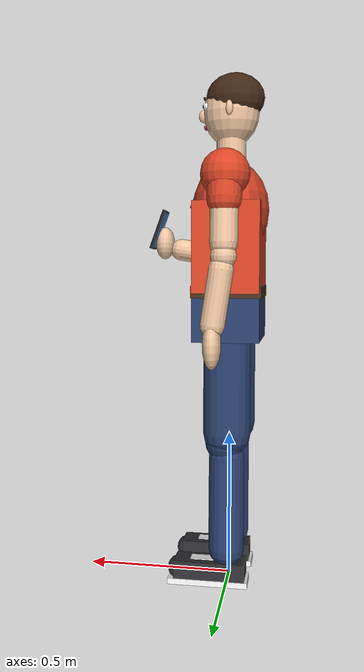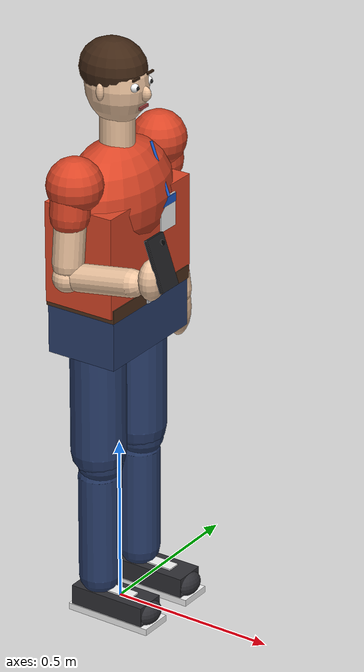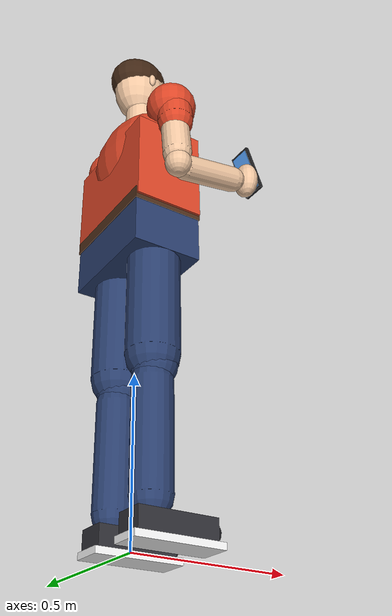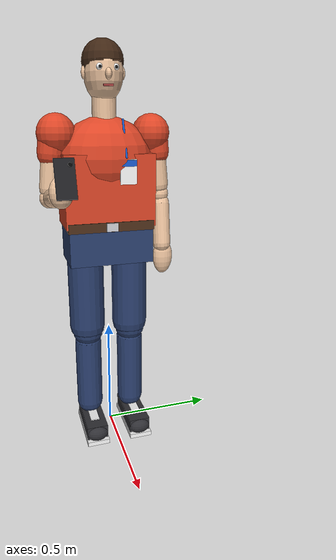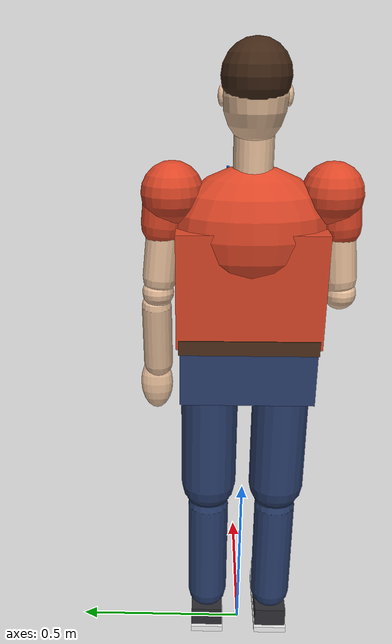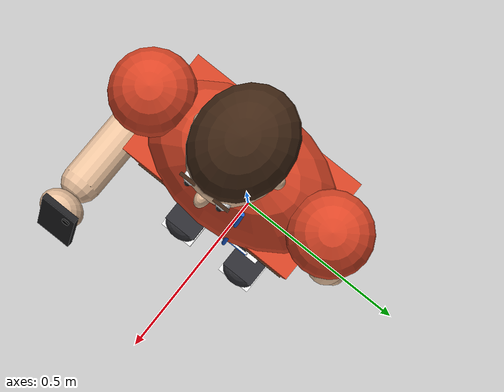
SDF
<?xml version="1.0"?>
<sdf version="1.9">
<model name="humain">
  <static>true</static>
  <!-- Spectateur Eurobot qui filme le match. Repere : origine au sol entre les pieds, x vers l'avant. Taille ~1.72 m. -->
  <link name="link">
    <!-- Collisions simplifiees : le lidar (z = 0.385 m) voit deux jambes -->
    <collision name="jambe_g_c"><pose>0 0.1 0.45 0 0 0</pose><geometry><capsule><radius>0.07</radius><length>0.72</length></capsule></geometry></collision>
    <collision name="jambe_d_c"><pose>0 -0.1 0.45 0 0 0</pose><geometry><capsule><radius>0.07</radius><length>0.72</length></capsule></geometry></collision>
    <collision name="torse_c"><pose>0 0 1.15 0 0 0</pose><geometry><box><size>0.26 0.44 0.6</size></box></geometry></collision>
    <collision name="tete_c"><pose>0 0 1.6 0 0 0</pose><geometry><sphere><radius>0.12</radius></sphere></geometry></collision>

    <!-- Jambe gauche -->
    <visual name="semelle_g"><pose>0.06 0.1 0.01 0 0 0</pose><geometry><box><size>0.27 0.1 0.02</size></box></geometry><material><ambient>0.95 0.95 0.95 1</ambient><diffuse>0.95 0.95 0.95 1</diffuse><specular>0.1 0.1 0.1 1</specular></material></visual>
    <visual name="chaussure_g"><pose>0.055 0.1 0.05 0 0 0</pose><geometry><box><size>0.24 0.095 0.06</size></box></geometry><material><ambient>0.18 0.18 0.2 1</ambient><diffuse>0.18 0.18 0.2 1</diffuse><specular>0.1 0.1 0.1 1</specular></material></visual>
    <visual name="bout_g"><pose>0.17 0.1 0.045 0 0 0</pose><geometry><ellipsoid><radii>0.03 0.0475 0.035</radii></ellipsoid></geometry><material><ambient>0.18 0.18 0.2 1</ambient><diffuse>0.18 0.18 0.2 1</diffuse><specular>0.1 0.1 0.1 1</specular></material></visual>
    <visual name="lacets_g"><pose>0.08 0.1 0.082 0 0 0</pose><geometry><box><size>0.08 0.04 0.005</size></box></geometry><material><ambient>0.95 0.95 0.95 1</ambient><diffuse>0.95 0.95 0.95 1</diffuse><specular>0.1 0.1 0.1 1</specular></material></visual>
    <visual name="mollet_g"><pose>0 0.1 0.28 0 0 0</pose><geometry><capsule><radius>0.06</radius><length>0.32</length></capsule></geometry><material><ambient>0.16 0.24 0.42 1</ambient><diffuse>0.16 0.24 0.42 1</diffuse><specular>0.1 0.1 0.1 1</specular></material></visual>
    <visual name="genou_g"><pose>0.005 0.1 0.49 0 0 0</pose><geometry><sphere><radius>0.068</radius></sphere></geometry><material><ambient>0.16 0.24 0.42 1</ambient><diffuse>0.16 0.24 0.42 1</diffuse><specular>0.1 0.1 0.1 1</specular></material></visual>
    <visual name="cuisse_g"><pose>0 0.1 0.68 0 0 0</pose><geometry><capsule><radius>0.08</radius><length>0.32</length></capsule></geometry><material><ambient>0.16 0.24 0.42 1</ambient><diffuse>0.16 0.24 0.42 1</diffuse><specular>0.1 0.1 0.1 1</specular></material></visual>

    <!-- Jambe droite -->
    <visual name="semelle_d"><pose>0.06 -0.1 0.01 0 0 0</pose><geometry><box><size>0.27 0.1 0.02</size></box></geometry><material><ambient>0.95 0.95 0.95 1</ambient><diffuse>0.95 0.95 0.95 1</diffuse><specular>0.1 0.1 0.1 1</specular></material></visual>
    <visual name="chaussure_d"><pose>0.055 -0.1 0.05 0 0 0</pose><geometry><box><size>0.24 0.095 0.06</size></box></geometry><material><ambient>0.18 0.18 0.2 1</ambient><diffuse>0.18 0.18 0.2 1</diffuse><specular>0.1 0.1 0.1 1</specular></material></visual>
    <visual name="bout_d"><pose>0.17 -0.1 0.045 0 0 0</pose><geometry><ellipsoid><radii>0.03 0.0475 0.035</radii></ellipsoid></geometry><material><ambient>0.18 0.18 0.2 1</ambient><diffuse>0.18 0.18 0.2 1</diffuse><specular>0.1 0.1 0.1 1</specular></material></visual>
    <visual name="lacets_d"><pose>0.08 -0.1 0.082 0 0 0</pose><geometry><box><size>0.08 0.04 0.005</size></box></geometry><material><ambient>0.95 0.95 0.95 1</ambient><diffuse>0.95 0.95 0.95 1</diffuse><specular>0.1 0.1 0.1 1</specular></material></visual>
    <visual name="mollet_d"><pose>0 -0.1 0.28 0 0 0</pose><geometry><capsule><radius>0.06</radius><length>0.32</length></capsule></geometry><material><ambient>0.16 0.24 0.42 1</ambient><diffuse>0.16 0.24 0.42 1</diffuse><specular>0.1 0.1 0.1 1</specular></material></visual>
    <visual name="genou_d"><pose>0.005 -0.1 0.49 0 0 0</pose><geometry><sphere><radius>0.068</radius></sphere></geometry><material><ambient>0.16 0.24 0.42 1</ambient><diffuse>0.16 0.24 0.42 1</diffuse><specular>0.1 0.1 0.1 1</specular></material></visual>
    <visual name="cuisse_d"><pose>0 -0.1 0.68 0 0 0</pose><geometry><capsule><radius>0.08</radius><length>0.32</length></capsule></geometry><material><ambient>0.16 0.24 0.42 1</ambient><diffuse>0.16 0.24 0.42 1</diffuse><specular>0.1 0.1 0.1 1</specular></material></visual>

    <!-- Bassin et ceinture -->
    <visual name="bassin"><pose>0 0 0.91 0 0 0</pose><geometry><box><size>0.22 0.36 0.16</size></box></geometry><material><ambient>0.16 0.24 0.42 1</ambient><diffuse>0.16 0.24 0.42 1</diffuse><specular>0.1 0.1 0.1 1</specular></material></visual>
    <visual name="ceinture"><pose>0 0 0.995 0 0 0</pose><geometry><box><size>0.226 0.366 0.04</size></box></geometry><material><ambient>0.3 0.18 0.1 1</ambient><diffuse>0.3 0.18 0.1 1</diffuse><specular>0.1 0.1 0.1 1</specular></material></visual>
    <visual name="boucle"><pose>0.115 0 0.995 0 0 0</pose><geometry><box><size>0.008 0.05 0.035</size></box></geometry><material><ambient>0.8 0.8 0.82 1</ambient><diffuse>0.8 0.8 0.82 1</diffuse><specular>0.1 0.1 0.1 1</specular></material></visual>

    <!-- Torse (t-shirt) -->
    <visual name="ventre"><pose>0 0 1.14 0 0 0</pose><geometry><box><size>0.22 0.38 0.3</size></box></geometry><material><ambient>0.85 0.27 0.15 1</ambient><diffuse>0.85 0.27 0.15 1</diffuse><specular>0.1 0.1 0.1 1</specular></material></visual>
    <visual name="poitrine"><pose>0 0 1.27 0 0 0</pose><geometry><ellipsoid><radii>0.13 0.2 0.17</radii></ellipsoid></geometry><material><ambient>0.85 0.27 0.15 1</ambient><diffuse>0.85 0.27 0.15 1</diffuse><specular>0.1 0.1 0.1 1</specular></material></visual>
    <visual name="epaule_g"><pose>0 0.2 1.37 0 0 0</pose><geometry><sphere><radius>0.08</radius></sphere></geometry><material><ambient>0.85 0.27 0.15 1</ambient><diffuse>0.85 0.27 0.15 1</diffuse><specular>0.1 0.1 0.1 1</specular></material></visual>
    <visual name="manche_g"><pose>0 0.222 1.32 0.1 0 0</pose><geometry><capsule><radius>0.056</radius><length>0.06</length></capsule></geometry><material><ambient>0.85 0.27 0.15 1</ambient><diffuse>0.85 0.27 0.15 1</diffuse><specular>0.1 0.1 0.1 1</specular></material></visual>
    <visual name="epaule_d"><pose>0 -0.2 1.37 0 0 0</pose><geometry><sphere><radius>0.08</radius></sphere></geometry><material><ambient>0.85 0.27 0.15 1</ambient><diffuse>0.85 0.27 0.15 1</diffuse><specular>0.1 0.1 0.1 1</specular></material></visual>
    <visual name="manche_d"><pose>0 -0.222 1.32 -0.1 0 0</pose><geometry><capsule><radius>0.056</radius><length>0.06</length></capsule></geometry><material><ambient>0.85 0.27 0.15 1</ambient><diffuse>0.85 0.27 0.15 1</diffuse><specular>0.1 0.1 0.1 1</specular></material></visual>

    <!-- Badge Eurobot -->
    <visual name="cordon"><pose>0.1 0.06 1.35 0 -0.375 0</pose><geometry><cylinder><radius>0.004</radius><length>0.16</length></cylinder></geometry><material><ambient>0.1 0.35 0.8 1</ambient><diffuse>0.1 0.35 0.8 1</diffuse><specular>0.1 0.1 0.1 1</specular></material></visual>
    <visual name="badge"><pose>0.119 0.07 1.22 0 0 0</pose><geometry><box><size>0.004 0.07 0.1</size></box></geometry><material><ambient>0.97 0.97 0.97 1</ambient><diffuse>0.97 0.97 0.97 1</diffuse><specular>0.1 0.1 0.1 1</specular></material></visual>
    <visual name="badge_bande"><pose>0.1215 0.07 1.255 0 0 0</pose><geometry><box><size>0.002 0.07 0.025</size></box></geometry><material><ambient>0.1 0.35 0.8 1</ambient><diffuse>0.1 0.35 0.8 1</diffuse><specular>0.1 0.1 0.1 1</specular></material></visual>

    <!-- Bras gauche (le long du corps) -->
    <visual name="bras_g"><pose>0 0.225 1.25 0.1 0 0</pose><geometry><capsule><radius>0.045</radius><length>0.2</length></capsule></geometry><material><ambient>0.92 0.76 0.62 1</ambient><diffuse>0.92 0.76 0.62 1</diffuse><specular>0.1 0.1 0.1 1</specular></material></visual>
    <visual name="coude_g"><pose>0 0.24 1.11 0 0 0</pose><geometry><sphere><radius>0.042</radius></sphere></geometry><material><ambient>0.92 0.76 0.62 1</ambient><diffuse>0.92 0.76 0.62 1</diffuse><specular>0.1 0.1 0.1 1</specular></material></visual>
    <visual name="avant_bras_g"><pose>0.02 0.245 0.98 0 -0.15 0</pose><geometry><capsule><radius>0.04</radius><length>0.18</length></capsule></geometry><material><ambient>0.92 0.76 0.62 1</ambient><diffuse>0.92 0.76 0.62 1</diffuse><specular>0.1 0.1 0.1 1</specular></material></visual>
    <visual name="main_g"><pose>0.035 0.25 0.83 0 0 0</pose><geometry><ellipsoid><radii>0.03 0.045 0.08</radii></ellipsoid></geometry><material><ambient>0.92 0.76 0.62 1</ambient><diffuse>0.92 0.76 0.62 1</diffuse><specular>0.1 0.1 0.1 1</specular></material></visual>

    <!-- Bras droit (filme le match au telephone) -->
    <visual name="bras_d"><pose>0 -0.225 1.25 -0.1 0 0</pose><geometry><capsule><radius>0.045</radius><length>0.2</length></capsule></geometry><material><ambient>0.92 0.76 0.62 1</ambient><diffuse>0.92 0.76 0.62 1</diffuse><specular>0.1 0.1 0.1 1</specular></material></visual>
    <visual name="coude_d"><pose>0 -0.24 1.11 0 0 0</pose><geometry><sphere><radius>0.042</radius></sphere></geometry><material><ambient>0.92 0.76 0.62 1</ambient><diffuse>0.92 0.76 0.62 1</diffuse><specular>0.1 0.1 0.1 1</specular></material></visual>
    <visual name="avant_bras_d"><pose>0.12 -0.23 1.13 0 1.4 0</pose><geometry><capsule><radius>0.04</radius><length>0.18</length></capsule></geometry><material><ambient>0.92 0.76 0.62 1</ambient><diffuse>0.92 0.76 0.62 1</diffuse><specular>0.1 0.1 0.1 1</specular></material></visual>
    <visual name="main_d"><pose>0.27 -0.225 1.17 0 0 0</pose><geometry><ellipsoid><radii>0.035 0.045 0.06</radii></ellipsoid></geometry><material><ambient>0.92 0.76 0.62 1</ambient><diffuse>0.92 0.76 0.62 1</diffuse><specular>0.1 0.1 0.1 1</specular></material></visual>
    <visual name="telephone"><pose>0.29 -0.21 1.22 0 -0.35 0</pose><geometry><box><size>0.012 0.075 0.15</size></box></geometry><material><ambient>0.12 0.12 0.13 1</ambient><diffuse>0.12 0.12 0.13 1</diffuse><specular>0.1 0.1 0.1 1</specular></material></visual>
    <visual name="ecran"><pose>0.2834 -0.21 1.2176 0 -0.35 0</pose><geometry><box><size>0.002 0.065 0.135</size></box></geometry><material><ambient>0.35 0.65 1.0 1</ambient><diffuse>0.35 0.65 1.0 1</diffuse><specular>0.1 0.1 0.1 1</specular><emissive>0.21 0.39 0.60 1</emissive></material></visual>
    <visual name="objectif"><pose>0.2794 -0.19 1.2694 0 1.2208 0</pose><geometry><cylinder><radius>0.008</radius><length>0.004</length></cylinder></geometry><material><ambient>0.02 0.02 0.02 1</ambient><diffuse>0.02 0.02 0.02 1</diffuse><specular>0.1 0.1 0.1 1</specular></material></visual>

    <!-- Cou et tete -->
    <visual name="cou"><pose>0 0 1.46 0 0 0</pose><geometry><cylinder><radius>0.05</radius><length>0.1</length></cylinder></geometry><material><ambient>0.92 0.76 0.62 1</ambient><diffuse>0.92 0.76 0.62 1</diffuse><specular>0.1 0.1 0.1 1</specular></material></visual>
    <visual name="tete"><pose>0 0 1.6 0 0 0</pose><geometry><ellipsoid><radii>0.095 0.08 0.115</radii></ellipsoid></geometry><material><ambient>0.92 0.76 0.62 1</ambient><diffuse>0.92 0.76 0.62 1</diffuse><specular>0.1 0.1 0.1 1</specular></material></visual>
    <visual name="cheveux"><pose>-0.012 0 1.645 0 0 0</pose><geometry><ellipsoid><radii>0.1 0.085 0.085</radii></ellipsoid></geometry><material><ambient>0.25 0.15 0.08 1</ambient><diffuse>0.25 0.15 0.08 1</diffuse><specular>0.1 0.1 0.1 1</specular></material></visual>
    <visual name="oreille_g"><pose>0 0.08 1.6 0 0 0</pose><geometry><ellipsoid><radii>0.012 0.01 0.025</radii></ellipsoid></geometry><material><ambient>0.92 0.76 0.62 1</ambient><diffuse>0.92 0.76 0.62 1</diffuse><specular>0.1 0.1 0.1 1</specular></material></visual>
    <visual name="oeil_g"><pose>0.08 0.032 1.615 0 0 0</pose><geometry><sphere><radius>0.013</radius></sphere></geometry><material><ambient>0.97 0.97 0.97 1</ambient><diffuse>0.97 0.97 0.97 1</diffuse><specular>0.1 0.1 0.1 1</specular></material></visual>
    <visual name="pupille_g"><pose>0.09 0.032 1.615 0 0 0</pose><geometry><sphere><radius>0.006</radius></sphere></geometry><material><ambient>0.1 0.1 0.1 1</ambient><diffuse>0.1 0.1 0.1 1</diffuse><specular>0.1 0.1 0.1 1</specular></material></visual>
    <visual name="sourcil_g"><pose>0.086 0.033 1.64 0 0 0</pose><geometry><box><size>0.006 0.03 0.006</size></box></geometry><material><ambient>0.25 0.15 0.08 1</ambient><diffuse>0.25 0.15 0.08 1</diffuse><specular>0.1 0.1 0.1 1</specular></material></visual>
    <visual name="oreille_d"><pose>0 -0.08 1.6 0 0 0</pose><geometry><ellipsoid><radii>0.012 0.01 0.025</radii></ellipsoid></geometry><material><ambient>0.92 0.76 0.62 1</ambient><diffuse>0.92 0.76 0.62 1</diffuse><specular>0.1 0.1 0.1 1</specular></material></visual>
    <visual name="oeil_d"><pose>0.08 -0.032 1.615 0 0 0</pose><geometry><sphere><radius>0.013</radius></sphere></geometry><material><ambient>0.97 0.97 0.97 1</ambient><diffuse>0.97 0.97 0.97 1</diffuse><specular>0.1 0.1 0.1 1</specular></material></visual>
    <visual name="pupille_d"><pose>0.09 -0.032 1.615 0 0 0</pose><geometry><sphere><radius>0.006</radius></sphere></geometry><material><ambient>0.1 0.1 0.1 1</ambient><diffuse>0.1 0.1 0.1 1</diffuse><specular>0.1 0.1 0.1 1</specular></material></visual>
    <visual name="sourcil_d"><pose>0.086 -0.033 1.64 0 0 0</pose><geometry><box><size>0.006 0.03 0.006</size></box></geometry><material><ambient>0.25 0.15 0.08 1</ambient><diffuse>0.25 0.15 0.08 1</diffuse><specular>0.1 0.1 0.1 1</specular></material></visual>
    <visual name="nez"><pose>0.092 0 1.59 0 0 0</pose><geometry><ellipsoid><radii>0.02 0.013 0.022</radii></ellipsoid></geometry><material><ambient>0.92 0.76 0.62 1</ambient><diffuse>0.92 0.76 0.62 1</diffuse><specular>0.1 0.1 0.1 1</specular></material></visual>
    <visual name="bouche"><pose>0.088 0 1.55 0 0 0</pose><geometry><box><size>0.006 0.04 0.008</size></box></geometry><material><ambient>0.65 0.25 0.25 1</ambient><diffuse>0.65 0.25 0.25 1</diffuse><specular>0.1 0.1 0.1 1</specular></material></visual>
  </link>
</model>
</sdf>
